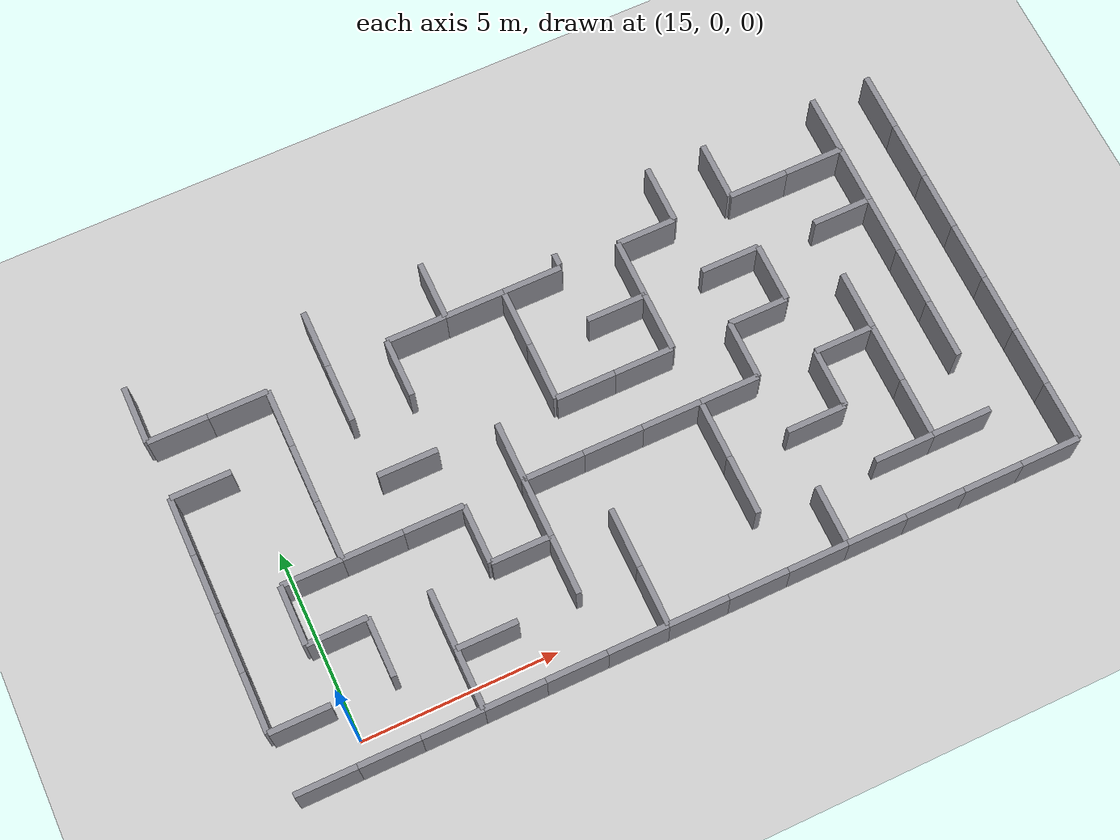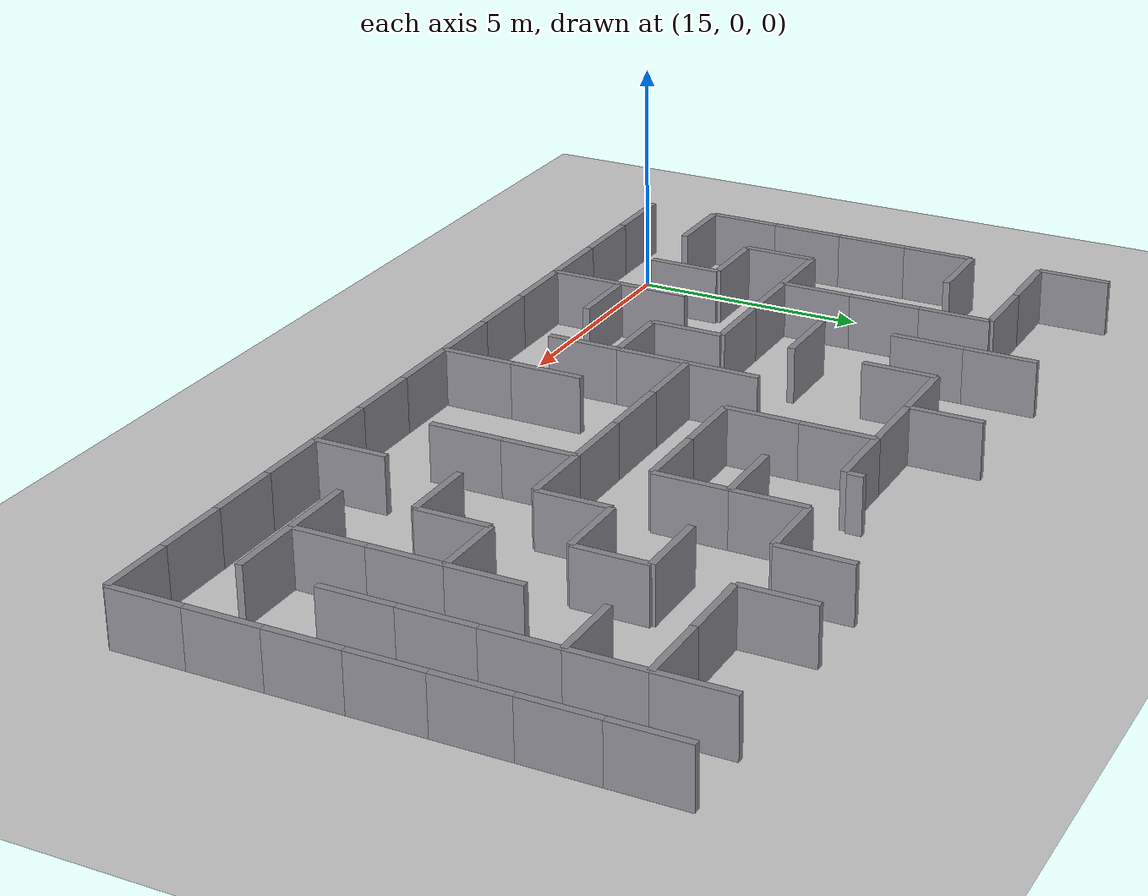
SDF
<sdf version="1.10">
 <world name="sar_maze_generated">
  <model name="ground_plane">
   <static>true</static>
   <link name="link">
    <collision name="collision">
     <geometry><plane><normal>0 0 1</normal><size>51.1 51.1</size></plane></geometry>
    </collision>
    <visual name="visual">
     <geometry><plane><normal>0 0 1</normal><size>51.1 51.1</size></plane></geometry>
     <material><ambient>0.8 0.8 0.8 1</ambient><diffuse>0.8 0.8 0.8 1</diffuse></material>
    </visual>
    <pose>16.27 16.27 0 0 0 0</pose>
    <inertial>
     <mass>1</mass>
     <inertia><ixx>1</ixx><ixy>0</ixy><ixz>0</ixz><iyy>1</iyy><iyz>0</iyz><izz>1</izz></inertia>
    </inertial>
   </link>
  </model>
  <model name="maze_structure">
   <static>true</static>
   <link name="wall_h_15">
    <static>true</static>
    <pose>13.9500 0.7750 0.6000 0 0 0</pose>
    <collision name="wall_h_15_collision">
     <geometry><box><size>1.5500 0.1500 1.2000</size></box></geometry>
    </collision>
    <visual name="wall_h_15_visual">
     <geometry><box><size>1.5500 0.1500 1.2000</size></box></geometry>
     <material><ambient>0.55 0.55 0.58 1</ambient><diffuse>0.55 0.55 0.58 1</diffuse></material>
    </visual>
   </link>
   <link name="wall_boundary_h_16">
    <static>true</static>
    <pose>13.9500 -0.7750 0.6000 0 0 0</pose>
    <collision name="wall_boundary_h_16_collision">
     <geometry><box><size>1.5500 0.1500 1.2000</size></box></geometry>
    </collision>
    <visual name="wall_boundary_h_16_visual">
     <geometry><box><size>1.5500 0.1500 1.2000</size></box></geometry>
     <material><ambient>0.55 0.55 0.58 1</ambient><diffuse>0.55 0.55 0.58 1</diffuse></material>
    </visual>
   </link>
   <link name="wall_boundary_h_17">
    <static>true</static>
    <pose>15.5000 -0.7750 0.6000 0 0 0</pose>
    <collision name="wall_boundary_h_17_collision">
     <geometry><box><size>1.5500 0.1500 1.2000</size></box></geometry>
    </collision>
    <visual name="wall_boundary_h_17_visual">
     <geometry><box><size>1.5500 0.1500 1.2000</size></box></geometry>
     <material><ambient>0.55 0.55 0.58 1</ambient><diffuse>0.55 0.55 0.58 1</diffuse></material>
    </visual>
   </link>
   <link name="wall_boundary_h_18">
    <static>true</static>
    <pose>17.0500 -0.7750 0.6000 0 0 0</pose>
    <collision name="wall_boundary_h_18_collision">
     <geometry><box><size>1.5500 0.1500 1.2000</size></box></geometry>
    </collision>
    <visual name="wall_boundary_h_18_visual">
     <geometry><box><size>1.5500 0.1500 1.2000</size></box></geometry>
     <material><ambient>0.55 0.55 0.58 1</ambient><diffuse>0.55 0.55 0.58 1</diffuse></material>
    </visual>
   </link>
   <link name="wall_v_19">
    <static>true</static>
    <pose>17.8250 0.0000 0.6000 0 0 0</pose>
    <collision name="wall_v_19_collision">
     <geometry><box><size>0.1500 1.5500 1.2000</size></box></geometry>
    </collision>
    <visual name="wall_v_19_visual">
     <geometry><box><size>0.1500 1.5500 1.2000</size></box></geometry>
     <material><ambient>0.55 0.55 0.58 1</ambient><diffuse>0.55 0.55 0.58 1</diffuse></material>
    </visual>
   </link>
   <link name="wall_h_20">
    <static>true</static>
    <pose>18.6000 0.7750 0.6000 0 0 0</pose>
    <collision name="wall_h_20_collision">
     <geometry><box><size>1.5500 0.1500 1.2000</size></box></geometry>
    </collision>
    <visual name="wall_h_20_visual">
     <geometry><box><size>1.5500 0.1500 1.2000</size></box></geometry>
     <material><ambient>0.55 0.55 0.58 1</ambient><diffuse>0.55 0.55 0.58 1</diffuse></material>
    </visual>
   </link>
   <link name="wall_boundary_h_21">
    <static>true</static>
    <pose>18.6000 -0.7750 0.6000 0 0 0</pose>
    <collision name="wall_boundary_h_21_collision">
     <geometry><box><size>1.5500 0.1500 1.2000</size></box></geometry>
    </collision>
    <visual name="wall_boundary_h_21_visual">
     <geometry><box><size>1.5500 0.1500 1.2000</size></box></geometry>
     <material><ambient>0.55 0.55 0.58 1</ambient><diffuse>0.55 0.55 0.58 1</diffuse></material>
    </visual>
   </link>
   <link name="wall_boundary_h_22">
    <static>true</static>
    <pose>20.1500 -0.7750 0.6000 0 0 0</pose>
    <collision name="wall_boundary_h_22_collision">
     <geometry><box><size>1.5500 0.1500 1.2000</size></box></geometry>
    </collision>
    <visual name="wall_boundary_h_22_visual">
     <geometry><box><size>1.5500 0.1500 1.2000</size></box></geometry>
     <material><ambient>0.55 0.55 0.58 1</ambient><diffuse>0.55 0.55 0.58 1</diffuse></material>
    </visual>
   </link>
   <link name="wall_boundary_h_23">
    <static>true</static>
    <pose>21.7000 -0.7750 0.6000 0 0 0</pose>
    <collision name="wall_boundary_h_23_collision">
     <geometry><box><size>1.5500 0.1500 1.2000</size></box></geometry>
    </collision>
    <visual name="wall_boundary_h_23_visual">
     <geometry><box><size>1.5500 0.1500 1.2000</size></box></geometry>
     <material><ambient>0.55 0.55 0.58 1</ambient><diffuse>0.55 0.55 0.58 1</diffuse></material>
    </visual>
   </link>
   <link name="wall_v_24">
    <static>true</static>
    <pose>22.4750 0.0000 0.6000 0 0 0</pose>
    <collision name="wall_v_24_collision">
     <geometry><box><size>0.1500 1.5500 1.2000</size></box></geometry>
    </collision>
    <visual name="wall_v_24_visual">
     <geometry><box><size>0.1500 1.5500 1.2000</size></box></geometry>
     <material><ambient>0.55 0.55 0.58 1</ambient><diffuse>0.55 0.55 0.58 1</diffuse></material>
    </visual>
   </link>
   <link name="wall_boundary_h_25">
    <static>true</static>
    <pose>23.2500 -0.7750 0.6000 0 0 0</pose>
    <collision name="wall_boundary_h_25_collision">
     <geometry><box><size>1.5500 0.1500 1.2000</size></box></geometry>
    </collision>
    <visual name="wall_boundary_h_25_visual">
     <geometry><box><size>1.5500 0.1500 1.2000</size></box></geometry>
     <material><ambient>0.55 0.55 0.58 1</ambient><diffuse>0.55 0.55 0.58 1</diffuse></material>
    </visual>
   </link>
   <link name="wall_boundary_h_26">
    <static>true</static>
    <pose>24.8000 -0.7750 0.6000 0 0 0</pose>
    <collision name="wall_boundary_h_26_collision">
     <geometry><box><size>1.5500 0.1500 1.2000</size></box></geometry>
    </collision>
    <visual name="wall_boundary_h_26_visual">
     <geometry><box><size>1.5500 0.1500 1.2000</size></box></geometry>
     <material><ambient>0.55 0.55 0.58 1</ambient><diffuse>0.55 0.55 0.58 1</diffuse></material>
    </visual>
   </link>
   <link name="wall_boundary_h_27">
    <static>true</static>
    <pose>26.3500 -0.7750 0.6000 0 0 0</pose>
    <collision name="wall_boundary_h_27_collision">
     <geometry><box><size>1.5500 0.1500 1.2000</size></box></geometry>
    </collision>
    <visual name="wall_boundary_h_27_visual">
     <geometry><box><size>1.5500 0.1500 1.2000</size></box></geometry>
     <material><ambient>0.55 0.55 0.58 1</ambient><diffuse>0.55 0.55 0.58 1</diffuse></material>
    </visual>
   </link>
   <link name="wall_v_28">
    <static>true</static>
    <pose>27.1250 0.0000 0.6000 0 0 0</pose>
    <collision name="wall_v_28_collision">
     <geometry><box><size>0.1500 1.5500 1.2000</size></box></geometry>
    </collision>
    <visual name="wall_v_28_visual">
     <geometry><box><size>0.1500 1.5500 1.2000</size></box></geometry>
     <material><ambient>0.55 0.55 0.58 1</ambient><diffuse>0.55 0.55 0.58 1</diffuse></material>
    </visual>
   </link>
   <link name="wall_boundary_h_29">
    <static>true</static>
    <pose>27.9000 -0.7750 0.6000 0 0 0</pose>
    <collision name="wall_boundary_h_29_collision">
     <geometry><box><size>1.5500 0.1500 1.2000</size></box></geometry>
    </collision>
    <visual name="wall_boundary_h_29_visual">
     <geometry><box><size>1.5500 0.1500 1.2000</size></box></geometry>
     <material><ambient>0.55 0.55 0.58 1</ambient><diffuse>0.55 0.55 0.58 1</diffuse></material>
    </visual>
   </link>
   <link name="wall_h_30">
    <static>true</static>
    <pose>29.4500 0.7750 0.6000 0 0 0</pose>
    <collision name="wall_h_30_collision">
     <geometry><box><size>1.5500 0.1500 1.2000</size></box></geometry>
    </collision>
    <visual name="wall_h_30_visual">
     <geometry><box><size>1.5500 0.1500 1.2000</size></box></geometry>
     <material><ambient>0.55 0.55 0.58 1</ambient><diffuse>0.55 0.55 0.58 1</diffuse></material>
    </visual>
   </link>
   <link name="wall_boundary_h_31">
    <static>true</static>
    <pose>29.4500 -0.7750 0.6000 0 0 0</pose>
    <collision name="wall_boundary_h_31_collision">
     <geometry><box><size>1.5500 0.1500 1.2000</size></box></geometry>
    </collision>
    <visual name="wall_boundary_h_31_visual">
     <geometry><box><size>1.5500 0.1500 1.2000</size></box></geometry>
     <material><ambient>0.55 0.55 0.58 1</ambient><diffuse>0.55 0.55 0.58 1</diffuse></material>
    </visual>
   </link>
   <link name="wall_h_32">
    <static>true</static>
    <pose>31.0000 0.7750 0.6000 0 0 0</pose>
    <collision name="wall_h_32_collision">
     <geometry><box><size>1.5500 0.1500 1.2000</size></box></geometry>
    </collision>
    <visual name="wall_h_32_visual">
     <geometry><box><size>1.5500 0.1500 1.2000</size></box></geometry>
     <material><ambient>0.55 0.55 0.58 1</ambient><diffuse>0.55 0.55 0.58 1</diffuse></material>
    </visual>
   </link>
   <link name="wall_boundary_h_33">
    <static>true</static>
    <pose>31.0000 -0.7750 0.6000 0 0 0</pose>
    <collision name="wall_boundary_h_33_collision">
     <geometry><box><size>1.5500 0.1500 1.2000</size></box></geometry>
    </collision>
    <visual name="wall_boundary_h_33_visual">
     <geometry><box><size>1.5500 0.1500 1.2000</size></box></geometry>
     <material><ambient>0.55 0.55 0.58 1</ambient><diffuse>0.55 0.55 0.58 1</diffuse></material>
    </visual>
   </link>
   <link name="wall_boundary_h_34">
    <static>true</static>
    <pose>32.5500 -0.7750 0.6000 0 0 0</pose>
    <collision name="wall_boundary_h_34_collision">
     <geometry><box><size>1.5500 0.1500 1.2000</size></box></geometry>
    </collision>
    <visual name="wall_boundary_h_34_visual">
     <geometry><box><size>1.5500 0.1500 1.2000</size></box></geometry>
     <material><ambient>0.55 0.55 0.58 1</ambient><diffuse>0.55 0.55 0.58 1</diffuse></material>
    </visual>
   </link>
   <link name="wall_boundary_v_35">
    <static>true</static>
    <pose>33.3250 0.0000 0.6000 0 0 0</pose>
    <collision name="wall_boundary_v_35_collision">
     <geometry><box><size>0.1500 1.5500 1.2000</size></box></geometry>
    </collision>
    <visual name="wall_boundary_v_35_visual">
     <geometry><box><size>0.1500 1.5500 1.2000</size></box></geometry>
     <material><ambient>0.55 0.55 0.58 1</ambient><diffuse>0.55 0.55 0.58 1</diffuse></material>
    </visual>
   </link>
   <link name="wall_v_45">
    <static>true</static>
    <pose>13.1750 1.5500 0.6000 0 0 0</pose>
    <collision name="wall_v_45_collision">
     <geometry><box><size>0.1500 1.5500 1.2000</size></box></geometry>
    </collision>
    <visual name="wall_v_45_visual">
     <geometry><box><size>0.1500 1.5500 1.2000</size></box></geometry>
     <material><ambient>0.55 0.55 0.58 1</ambient><diffuse>0.55 0.55 0.58 1</diffuse></material>
    </visual>
   </link>
   <link name="wall_h_46">
    <static>true</static>
    <pose>15.5000 2.3250 0.6000 0 0 0</pose>
    <collision name="wall_h_46_collision">
     <geometry><box><size>1.5500 0.1500 1.2000</size></box></geometry>
    </collision>
    <visual name="wall_h_46_visual">
     <geometry><box><size>1.5500 0.1500 1.2000</size></box></geometry>
     <material><ambient>0.55 0.55 0.58 1</ambient><diffuse>0.55 0.55 0.58 1</diffuse></material>
    </visual>
   </link>
   <link name="wall_v_47">
    <static>true</static>
    <pose>16.2750 1.5500 0.6000 0 0 0</pose>
    <collision name="wall_v_47_collision">
     <geometry><box><size>0.1500 1.5500 1.2000</size></box></geometry>
    </collision>
    <visual name="wall_v_47_visual">
     <geometry><box><size>0.1500 1.5500 1.2000</size></box></geometry>
     <material><ambient>0.55 0.55 0.58 1</ambient><diffuse>0.55 0.55 0.58 1</diffuse></material>
    </visual>
   </link>
   <link name="wall_v_48">
    <static>true</static>
    <pose>17.8250 1.5500 0.6000 0 0 0</pose>
    <collision name="wall_v_48_collision">
     <geometry><box><size>0.1500 1.5500 1.2000</size></box></geometry>
    </collision>
    <visual name="wall_v_48_visual">
     <geometry><box><size>0.1500 1.5500 1.2000</size></box></geometry>
     <material><ambient>0.55 0.55 0.58 1</ambient><diffuse>0.55 0.55 0.58 1</diffuse></material>
    </visual>
   </link>
   <link name="wall_h_49">
    <static>true</static>
    <pose>20.1500 2.3250 0.6000 0 0 0</pose>
    <collision name="wall_h_49_collision">
     <geometry><box><size>1.5500 0.1500 1.2000</size></box></geometry>
    </collision>
    <visual name="wall_h_49_visual">
     <geometry><box><size>1.5500 0.1500 1.2000</size></box></geometry>
     <material><ambient>0.55 0.55 0.58 1</ambient><diffuse>0.55 0.55 0.58 1</diffuse></material>
    </visual>
   </link>
   <link name="wall_v_50">
    <static>true</static>
    <pose>20.9250 1.5500 0.6000 0 0 0</pose>
    <collision name="wall_v_50_collision">
     <geometry><box><size>0.1500 1.5500 1.2000</size></box></geometry>
    </collision>
    <visual name="wall_v_50_visual">
     <geometry><box><size>0.1500 1.5500 1.2000</size></box></geometry>
     <material><ambient>0.55 0.55 0.58 1</ambient><diffuse>0.55 0.55 0.58 1</diffuse></material>
    </visual>
   </link>
   <link name="wall_v_51">
    <static>true</static>
    <pose>22.4750 1.5500 0.6000 0 0 0</pose>
    <collision name="wall_v_51_collision">
     <geometry><box><size>0.1500 1.5500 1.2000</size></box></geometry>
    </collision>
    <visual name="wall_v_51_visual">
     <geometry><box><size>0.1500 1.5500 1.2000</size></box></geometry>
     <material><ambient>0.55 0.55 0.58 1</ambient><diffuse>0.55 0.55 0.58 1</diffuse></material>
    </visual>
   </link>
   <link name="wall_v_52">
    <static>true</static>
    <pose>25.5750 1.5500 0.6000 0 0 0</pose>
    <collision name="wall_v_52_collision">
     <geometry><box><size>0.1500 1.5500 1.2000</size></box></geometry>
    </collision>
    <visual name="wall_v_52_visual">
     <geometry><box><size>0.1500 1.5500 1.2000</size></box></geometry>
     <material><ambient>0.55 0.55 0.58 1</ambient><diffuse>0.55 0.55 0.58 1</diffuse></material>
    </visual>
   </link>
   <link name="wall_h_53">
    <static>true</static>
    <pose>27.9000 2.3250 0.6000 0 0 0</pose>
    <collision name="wall_h_53_collision">
     <geometry><box><size>1.5500 0.1500 1.2000</size></box></geometry>
    </collision>
    <visual name="wall_h_53_visual">
     <geometry><box><size>1.5500 0.1500 1.2000</size></box></geometry>
     <material><ambient>0.55 0.55 0.58 1</ambient><diffuse>0.55 0.55 0.58 1</diffuse></material>
    </visual>
   </link>
   <link name="wall_v_54">
    <static>true</static>
    <pose>30.2250 1.5500 0.6000 0 0 0</pose>
    <collision name="wall_v_54_collision">
     <geometry><box><size>0.1500 1.5500 1.2000</size></box></geometry>
    </collision>
    <visual name="wall_v_54_visual">
     <geometry><box><size>0.1500 1.5500 1.2000</size></box></geometry>
     <material><ambient>0.55 0.55 0.58 1</ambient><diffuse>0.55 0.55 0.58 1</diffuse></material>
    </visual>
   </link>
   <link name="wall_boundary_v_55">
    <static>true</static>
    <pose>33.3250 1.5500 0.6000 0 0 0</pose>
    <collision name="wall_boundary_v_55_collision">
     <geometry><box><size>0.1500 1.5500 1.2000</size></box></geometry>
    </collision>
    <visual name="wall_boundary_v_55_visual">
     <geometry><box><size>0.1500 1.5500 1.2000</size></box></geometry>
     <material><ambient>0.55 0.55 0.58 1</ambient><diffuse>0.55 0.55 0.58 1</diffuse></material>
    </visual>
   </link>
   <link name="wall_v_64">
    <static>true</static>
    <pose>13.1750 3.1000 0.6000 0 0 0</pose>
    <collision name="wall_v_64_collision">
     <geometry><box><size>0.1500 1.5500 1.2000</size></box></geometry>
    </collision>
    <visual name="wall_v_64_visual">
     <geometry><box><size>0.1500 1.5500 1.2000</size></box></geometry>
     <material><ambient>0.55 0.55 0.58 1</ambient><diffuse>0.55 0.55 0.58 1</diffuse></material>
    </visual>
   </link>
   <link name="wall_v_65">
    <static>true</static>
    <pose>14.7250 3.1000 0.6000 0 0 0</pose>
    <collision name="wall_v_65_collision">
     <geometry><box><size>0.1500 1.5500 1.2000</size></box></geometry>
    </collision>
    <visual name="wall_v_65_visual">
     <geometry><box><size>0.1500 1.5500 1.2000</size></box></geometry>
     <material><ambient>0.55 0.55 0.58 1</ambient><diffuse>0.55 0.55 0.58 1</diffuse></material>
    </visual>
   </link>
   <link name="wall_h_66">
    <static>true</static>
    <pose>15.5000 3.8750 0.6000 0 0 0</pose>
    <collision name="wall_h_66_collision">
     <geometry><box><size>1.5500 0.1500 1.2000</size></box></geometry>
    </collision>
    <visual name="wall_h_66_visual">
     <geometry><box><size>1.5500 0.1500 1.2000</size></box></geometry>
     <material><ambient>0.55 0.55 0.58 1</ambient><diffuse>0.55 0.55 0.58 1</diffuse></material>
    </visual>
   </link>
   <link name="wall_h_67">
    <static>true</static>
    <pose>17.0500 3.8750 0.6000 0 0 0</pose>
    <collision name="wall_h_67_collision">
     <geometry><box><size>1.5500 0.1500 1.2000</size></box></geometry>
    </collision>
    <visual name="wall_h_67_visual">
     <geometry><box><size>1.5500 0.1500 1.2000</size></box></geometry>
     <material><ambient>0.55 0.55 0.58 1</ambient><diffuse>0.55 0.55 0.58 1</diffuse></material>
    </visual>
   </link>
   <link name="wall_h_68">
    <static>true</static>
    <pose>18.6000 3.8750 0.6000 0 0 0</pose>
    <collision name="wall_h_68_collision">
     <geometry><box><size>1.5500 0.1500 1.2000</size></box></geometry>
    </collision>
    <visual name="wall_h_68_visual">
     <geometry><box><size>1.5500 0.1500 1.2000</size></box></geometry>
     <material><ambient>0.55 0.55 0.58 1</ambient><diffuse>0.55 0.55 0.58 1</diffuse></material>
    </visual>
   </link>
   <link name="wall_v_69">
    <static>true</static>
    <pose>19.3750 3.1000 0.6000 0 0 0</pose>
    <collision name="wall_v_69_collision">
     <geometry><box><size>0.1500 1.5500 1.2000</size></box></geometry>
    </collision>
    <visual name="wall_v_69_visual">
     <geometry><box><size>0.1500 1.5500 1.2000</size></box></geometry>
     <material><ambient>0.55 0.55 0.58 1</ambient><diffuse>0.55 0.55 0.58 1</diffuse></material>
    </visual>
   </link>
   <link name="wall_v_70">
    <static>true</static>
    <pose>20.9250 3.1000 0.6000 0 0 0</pose>
    <collision name="wall_v_70_collision">
     <geometry><box><size>0.1500 1.5500 1.2000</size></box></geometry>
    </collision>
    <visual name="wall_v_70_visual">
     <geometry><box><size>0.1500 1.5500 1.2000</size></box></geometry>
     <material><ambient>0.55 0.55 0.58 1</ambient><diffuse>0.55 0.55 0.58 1</diffuse></material>
    </visual>
   </link>
   <link name="wall_h_71">
    <static>true</static>
    <pose>21.7000 3.8750 0.6000 0 0 0</pose>
    <collision name="wall_h_71_collision">
     <geometry><box><size>1.5500 0.1500 1.2000</size></box></geometry>
    </collision>
    <visual name="wall_h_71_visual">
     <geometry><box><size>1.5500 0.1500 1.2000</size></box></geometry>
     <material><ambient>0.55 0.55 0.58 1</ambient><diffuse>0.55 0.55 0.58 1</diffuse></material>
    </visual>
   </link>
   <link name="wall_h_72">
    <static>true</static>
    <pose>23.2500 3.8750 0.6000 0 0 0</pose>
    <collision name="wall_h_72_collision">
     <geometry><box><size>1.5500 0.1500 1.2000</size></box></geometry>
    </collision>
    <visual name="wall_h_72_visual">
     <geometry><box><size>1.5500 0.1500 1.2000</size></box></geometry>
     <material><ambient>0.55 0.55 0.58 1</ambient><diffuse>0.55 0.55 0.58 1</diffuse></material>
    </visual>
   </link>
   <link name="wall_h_73">
    <static>true</static>
    <pose>24.8000 3.8750 0.6000 0 0 0</pose>
    <collision name="wall_h_73_collision">
     <geometry><box><size>1.5500 0.1500 1.2000</size></box></geometry>
    </collision>
    <visual name="wall_h_73_visual">
     <geometry><box><size>1.5500 0.1500 1.2000</size></box></geometry>
     <material><ambient>0.55 0.55 0.58 1</ambient><diffuse>0.55 0.55 0.58 1</diffuse></material>
    </visual>
   </link>
   <link name="wall_v_74">
    <static>true</static>
    <pose>25.5750 3.1000 0.6000 0 0 0</pose>
    <collision name="wall_v_74_collision">
     <geometry><box><size>0.1500 1.5500 1.2000</size></box></geometry>
    </collision>
    <visual name="wall_v_74_visual">
     <geometry><box><size>0.1500 1.5500 1.2000</size></box></geometry>
     <material><ambient>0.55 0.55 0.58 1</ambient><diffuse>0.55 0.55 0.58 1</diffuse></material>
    </visual>
   </link>
   <link name="wall_h_75">
    <static>true</static>
    <pose>26.3500 3.8750 0.6000 0 0 0</pose>
    <collision name="wall_h_75_collision">
     <geometry><box><size>1.5500 0.1500 1.2000</size></box></geometry>
    </collision>
    <visual name="wall_h_75_visual">
     <geometry><box><size>1.5500 0.1500 1.2000</size></box></geometry>
     <material><ambient>0.55 0.55 0.58 1</ambient><diffuse>0.55 0.55 0.58 1</diffuse></material>
    </visual>
   </link>
   <link name="wall_v_76">
    <static>true</static>
    <pose>28.6750 3.1000 0.6000 0 0 0</pose>
    <collision name="wall_v_76_collision">
     <geometry><box><size>0.1500 1.5500 1.2000</size></box></geometry>
    </collision>
    <visual name="wall_v_76_visual">
     <geometry><box><size>0.1500 1.5500 1.2000</size></box></geometry>
     <material><ambient>0.55 0.55 0.58 1</ambient><diffuse>0.55 0.55 0.58 1</diffuse></material>
    </visual>
   </link>
   <link name="wall_h_77">
    <static>true</static>
    <pose>29.4500 3.8750 0.6000 0 0 0</pose>
    <collision name="wall_h_77_collision">
     <geometry><box><size>1.5500 0.1500 1.2000</size></box></geometry>
    </collision>
    <visual name="wall_h_77_visual">
     <geometry><box><size>1.5500 0.1500 1.2000</size></box></geometry>
     <material><ambient>0.55 0.55 0.58 1</ambient><diffuse>0.55 0.55 0.58 1</diffuse></material>
    </visual>
   </link>
   <link name="wall_v_78">
    <static>true</static>
    <pose>30.2250 3.1000 0.6000 0 0 0</pose>
    <collision name="wall_v_78_collision">
     <geometry><box><size>0.1500 1.5500 1.2000</size></box></geometry>
    </collision>
    <visual name="wall_v_78_visual">
     <geometry><box><size>0.1500 1.5500 1.2000</size></box></geometry>
     <material><ambient>0.55 0.55 0.58 1</ambient><diffuse>0.55 0.55 0.58 1</diffuse></material>
    </visual>
   </link>
   <link name="wall_v_79">
    <static>true</static>
    <pose>31.7750 3.1000 0.6000 0 0 0</pose>
    <collision name="wall_v_79_collision">
     <geometry><box><size>0.1500 1.5500 1.2000</size></box></geometry>
    </collision>
    <visual name="wall_v_79_visual">
     <geometry><box><size>0.1500 1.5500 1.2000</size></box></geometry>
     <material><ambient>0.55 0.55 0.58 1</ambient><diffuse>0.55 0.55 0.58 1</diffuse></material>
    </visual>
   </link>
   <link name="wall_boundary_v_80">
    <static>true</static>
    <pose>33.3250 3.1000 0.6000 0 0 0</pose>
    <collision name="wall_boundary_v_80_collision">
     <geometry><box><size>0.1500 1.5500 1.2000</size></box></geometry>
    </collision>
    <visual name="wall_boundary_v_80_visual">
     <geometry><box><size>0.1500 1.5500 1.2000</size></box></geometry>
     <material><ambient>0.55 0.55 0.58 1</ambient><diffuse>0.55 0.55 0.58 1</diffuse></material>
    </visual>
   </link>
   <link name="wall_v_88">
    <static>true</static>
    <pose>13.1750 4.6500 0.6000 0 0 0</pose>
    <collision name="wall_v_88_collision">
     <geometry><box><size>0.1500 1.5500 1.2000</size></box></geometry>
    </collision>
    <visual name="wall_v_88_visual">
     <geometry><box><size>0.1500 1.5500 1.2000</size></box></geometry>
     <material><ambient>0.55 0.55 0.58 1</ambient><diffuse>0.55 0.55 0.58 1</diffuse></material>
    </visual>
   </link>
   <link name="wall_v_89">
    <static>true</static>
    <pose>16.2750 4.6500 0.6000 0 0 0</pose>
    <collision name="wall_v_89_collision">
     <geometry><box><size>0.1500 1.5500 1.2000</size></box></geometry>
    </collision>
    <visual name="wall_v_89_visual">
     <geometry><box><size>0.1500 1.5500 1.2000</size></box></geometry>
     <material><ambient>0.55 0.55 0.58 1</ambient><diffuse>0.55 0.55 0.58 1</diffuse></material>
    </visual>
   </link>
   <link name="wall_h_90">
    <static>true</static>
    <pose>18.6000 5.4250 0.6000 0 0 0</pose>
    <collision name="wall_h_90_collision">
     <geometry><box><size>1.5500 0.1500 1.2000</size></box></geometry>
    </collision>
    <visual name="wall_h_90_visual">
     <geometry><box><size>1.5500 0.1500 1.2000</size></box></geometry>
     <material><ambient>0.55 0.55 0.58 1</ambient><diffuse>0.55 0.55 0.58 1</diffuse></material>
    </visual>
   </link>
   <link name="wall_v_91">
    <static>true</static>
    <pose>20.9250 4.6500 0.6000 0 0 0</pose>
    <collision name="wall_v_91_collision">
     <geometry><box><size>0.1500 1.5500 1.2000</size></box></geometry>
    </collision>
    <visual name="wall_v_91_visual">
     <geometry><box><size>0.1500 1.5500 1.2000</size></box></geometry>
     <material><ambient>0.55 0.55 0.58 1</ambient><diffuse>0.55 0.55 0.58 1</diffuse></material>
    </visual>
   </link>
   <link name="wall_h_92">
    <static>true</static>
    <pose>23.2500 5.4250 0.6000 0 0 0</pose>
    <collision name="wall_h_92_collision">
     <geometry><box><size>1.5500 0.1500 1.2000</size></box></geometry>
    </collision>
    <visual name="wall_h_92_visual">
     <geometry><box><size>1.5500 0.1500 1.2000</size></box></geometry>
     <material><ambient>0.55 0.55 0.58 1</ambient><diffuse>0.55 0.55 0.58 1</diffuse></material>
    </visual>
   </link>
   <link name="wall_h_93">
    <static>true</static>
    <pose>24.8000 5.4250 0.6000 0 0 0</pose>
    <collision name="wall_h_93_collision">
     <geometry><box><size>1.5500 0.1500 1.2000</size></box></geometry>
    </collision>
    <visual name="wall_h_93_visual">
     <geometry><box><size>1.5500 0.1500 1.2000</size></box></geometry>
     <material><ambient>0.55 0.55 0.58 1</ambient><diffuse>0.55 0.55 0.58 1</diffuse></material>
    </visual>
   </link>
   <link name="wall_v_94">
    <static>true</static>
    <pose>27.1250 4.6500 0.6000 0 0 0</pose>
    <collision name="wall_v_94_collision">
     <geometry><box><size>0.1500 1.5500 1.2000</size></box></geometry>
    </collision>
    <visual name="wall_v_94_visual">
     <geometry><box><size>0.1500 1.5500 1.2000</size></box></geometry>
     <material><ambient>0.55 0.55 0.58 1</ambient><diffuse>0.55 0.55 0.58 1</diffuse></material>
    </visual>
   </link>
   <link name="wall_h_95">
    <static>true</static>
    <pose>27.9000 5.4250 0.6000 0 0 0</pose>
    <collision name="wall_h_95_collision">
     <geometry><box><size>1.5500 0.1500 1.2000</size></box></geometry>
    </collision>
    <visual name="wall_h_95_visual">
     <geometry><box><size>1.5500 0.1500 1.2000</size></box></geometry>
     <material><ambient>0.55 0.55 0.58 1</ambient><diffuse>0.55 0.55 0.58 1</diffuse></material>
    </visual>
   </link>
   <link name="wall_v_96">
    <static>true</static>
    <pose>30.2250 4.6500 0.6000 0 0 0</pose>
    <collision name="wall_v_96_collision">
     <geometry><box><size>0.1500 1.5500 1.2000</size></box></geometry>
    </collision>
    <visual name="wall_v_96_visual">
     <geometry><box><size>0.1500 1.5500 1.2000</size></box></geometry>
     <material><ambient>0.55 0.55 0.58 1</ambient><diffuse>0.55 0.55 0.58 1</diffuse></material>
    </visual>
   </link>
   <link name="wall_v_97">
    <static>true</static>
    <pose>31.7750 4.6500 0.6000 0 0 0</pose>
    <collision name="wall_v_97_collision">
     <geometry><box><size>0.1500 1.5500 1.2000</size></box></geometry>
    </collision>
    <visual name="wall_v_97_visual">
     <geometry><box><size>0.1500 1.5500 1.2000</size></box></geometry>
     <material><ambient>0.55 0.55 0.58 1</ambient><diffuse>0.55 0.55 0.58 1</diffuse></material>
    </visual>
   </link>
   <link name="wall_boundary_v_98">
    <static>true</static>
    <pose>33.3250 4.6500 0.6000 0 0 0</pose>
    <collision name="wall_boundary_v_98_collision">
     <geometry><box><size>0.1500 1.5500 1.2000</size></box></geometry>
    </collision>
    <visual name="wall_boundary_v_98_visual">
     <geometry><box><size>0.1500 1.5500 1.2000</size></box></geometry>
     <material><ambient>0.55 0.55 0.58 1</ambient><diffuse>0.55 0.55 0.58 1</diffuse></material>
    </visual>
   </link>
   <link name="wall_v_107">
    <static>true</static>
    <pose>13.1750 6.2000 0.6000 0 0 0</pose>
    <collision name="wall_v_107_collision">
     <geometry><box><size>0.1500 1.5500 1.2000</size></box></geometry>
    </collision>
    <visual name="wall_v_107_visual">
     <geometry><box><size>0.1500 1.5500 1.2000</size></box></geometry>
     <material><ambient>0.55 0.55 0.58 1</ambient><diffuse>0.55 0.55 0.58 1</diffuse></material>
    </visual>
   </link>
   <link name="wall_h_108">
    <static>true</static>
    <pose>13.9500 6.9750 0.6000 0 0 0</pose>
    <collision name="wall_h_108_collision">
     <geometry><box><size>1.5500 0.1500 1.2000</size></box></geometry>
    </collision>
    <visual name="wall_h_108_visual">
     <geometry><box><size>1.5500 0.1500 1.2000</size></box></geometry>
     <material><ambient>0.55 0.55 0.58 1</ambient><diffuse>0.55 0.55 0.58 1</diffuse></material>
    </visual>
   </link>
   <link name="wall_v_109">
    <static>true</static>
    <pose>16.2750 6.2000 0.6000 0 0 0</pose>
    <collision name="wall_v_109_collision">
     <geometry><box><size>0.1500 1.5500 1.2000</size></box></geometry>
    </collision>
    <visual name="wall_v_109_visual">
     <geometry><box><size>0.1500 1.5500 1.2000</size></box></geometry>
     <material><ambient>0.55 0.55 0.58 1</ambient><diffuse>0.55 0.55 0.58 1</diffuse></material>
    </visual>
   </link>
   <link name="wall_v_110">
    <static>true</static>
    <pose>22.4750 6.2000 0.6000 0 0 0</pose>
    <collision name="wall_v_110_collision">
     <geometry><box><size>0.1500 1.5500 1.2000</size></box></geometry>
    </collision>
    <visual name="wall_v_110_visual">
     <geometry><box><size>0.1500 1.5500 1.2000</size></box></geometry>
     <material><ambient>0.55 0.55 0.58 1</ambient><diffuse>0.55 0.55 0.58 1</diffuse></material>
    </visual>
   </link>
   <link name="wall_h_111">
    <static>true</static>
    <pose>24.8000 6.9750 0.6000 0 0 0</pose>
    <collision name="wall_h_111_collision">
     <geometry><box><size>1.5500 0.1500 1.2000</size></box></geometry>
    </collision>
    <visual name="wall_h_111_visual">
     <geometry><box><size>1.5500 0.1500 1.2000</size></box></geometry>
     <material><ambient>0.55 0.55 0.58 1</ambient><diffuse>0.55 0.55 0.58 1</diffuse></material>
    </visual>
   </link>
   <link name="wall_v_112">
    <static>true</static>
    <pose>25.5750 6.2000 0.6000 0 0 0</pose>
    <collision name="wall_v_112_collision">
     <geometry><box><size>0.1500 1.5500 1.2000</size></box></geometry>
    </collision>
    <visual name="wall_v_112_visual">
     <geometry><box><size>0.1500 1.5500 1.2000</size></box></geometry>
     <material><ambient>0.55 0.55 0.58 1</ambient><diffuse>0.55 0.55 0.58 1</diffuse></material>
    </visual>
   </link>
   <link name="wall_h_113">
    <static>true</static>
    <pose>27.9000 6.9750 0.6000 0 0 0</pose>
    <collision name="wall_h_113_collision">
     <geometry><box><size>1.5500 0.1500 1.2000</size></box></geometry>
    </collision>
    <visual name="wall_h_113_visual">
     <geometry><box><size>1.5500 0.1500 1.2000</size></box></geometry>
     <material><ambient>0.55 0.55 0.58 1</ambient><diffuse>0.55 0.55 0.58 1</diffuse></material>
    </visual>
   </link>
   <link name="wall_v_114">
    <static>true</static>
    <pose>28.6750 6.2000 0.6000 0 0 0</pose>
    <collision name="wall_v_114_collision">
     <geometry><box><size>0.1500 1.5500 1.2000</size></box></geometry>
    </collision>
    <visual name="wall_v_114_visual">
     <geometry><box><size>0.1500 1.5500 1.2000</size></box></geometry>
     <material><ambient>0.55 0.55 0.58 1</ambient><diffuse>0.55 0.55 0.58 1</diffuse></material>
    </visual>
   </link>
   <link name="wall_h_115">
    <static>true</static>
    <pose>31.0000 6.9750 0.6000 0 0 0</pose>
    <collision name="wall_h_115_collision">
     <geometry><box><size>1.5500 0.1500 1.2000</size></box></geometry>
    </collision>
    <visual name="wall_h_115_visual">
     <geometry><box><size>1.5500 0.1500 1.2000</size></box></geometry>
     <material><ambient>0.55 0.55 0.58 1</ambient><diffuse>0.55 0.55 0.58 1</diffuse></material>
    </visual>
   </link>
   <link name="wall_v_116">
    <static>true</static>
    <pose>31.7750 6.2000 0.6000 0 0 0</pose>
    <collision name="wall_v_116_collision">
     <geometry><box><size>0.1500 1.5500 1.2000</size></box></geometry>
    </collision>
    <visual name="wall_v_116_visual">
     <geometry><box><size>0.1500 1.5500 1.2000</size></box></geometry>
     <material><ambient>0.55 0.55 0.58 1</ambient><diffuse>0.55 0.55 0.58 1</diffuse></material>
    </visual>
   </link>
   <link name="wall_boundary_v_117">
    <static>true</static>
    <pose>33.3250 6.2000 0.6000 0 0 0</pose>
    <collision name="wall_boundary_v_117_collision">
     <geometry><box><size>0.1500 1.5500 1.2000</size></box></geometry>
    </collision>
    <visual name="wall_boundary_v_117_visual">
     <geometry><box><size>0.1500 1.5500 1.2000</size></box></geometry>
     <material><ambient>0.55 0.55 0.58 1</ambient><diffuse>0.55 0.55 0.58 1</diffuse></material>
    </visual>
   </link>
   <link name="wall_h_128">
    <static>true</static>
    <pose>13.9500 8.5250 0.6000 0 0 0</pose>
    <collision name="wall_h_128_collision">
     <geometry><box><size>1.5500 0.1500 1.2000</size></box></geometry>
    </collision>
    <visual name="wall_h_128_visual">
     <geometry><box><size>1.5500 0.1500 1.2000</size></box></geometry>
     <material><ambient>0.55 0.55 0.58 1</ambient><diffuse>0.55 0.55 0.58 1</diffuse></material>
    </visual>
   </link>
   <link name="wall_h_129">
    <static>true</static>
    <pose>15.5000 8.5250 0.6000 0 0 0</pose>
    <collision name="wall_h_129_collision">
     <geometry><box><size>1.5500 0.1500 1.2000</size></box></geometry>
    </collision>
    <visual name="wall_h_129_visual">
     <geometry><box><size>1.5500 0.1500 1.2000</size></box></geometry>
     <material><ambient>0.55 0.55 0.58 1</ambient><diffuse>0.55 0.55 0.58 1</diffuse></material>
    </visual>
   </link>
   <link name="wall_v_130">
    <static>true</static>
    <pose>16.2750 7.7500 0.6000 0 0 0</pose>
    <collision name="wall_v_130_collision">
     <geometry><box><size>0.1500 1.5500 1.2000</size></box></geometry>
    </collision>
    <visual name="wall_v_130_visual">
     <geometry><box><size>0.1500 1.5500 1.2000</size></box></geometry>
     <material><ambient>0.55 0.55 0.58 1</ambient><diffuse>0.55 0.55 0.58 1</diffuse></material>
    </visual>
   </link>
   <link name="wall_v_131">
    <static>true</static>
    <pose>17.8250 7.7500 0.6000 0 0 0</pose>
    <collision name="wall_v_131_collision">
     <geometry><box><size>0.1500 1.5500 1.2000</size></box></geometry>
    </collision>
    <visual name="wall_v_131_visual">
     <geometry><box><size>0.1500 1.5500 1.2000</size></box></geometry>
     <material><ambient>0.55 0.55 0.58 1</ambient><diffuse>0.55 0.55 0.58 1</diffuse></material>
    </visual>
   </link>
   <link name="wall_v_132">
    <static>true</static>
    <pose>19.3750 7.7500 0.6000 0 0 0</pose>
    <collision name="wall_v_132_collision">
     <geometry><box><size>0.1500 1.5500 1.2000</size></box></geometry>
    </collision>
    <visual name="wall_v_132_visual">
     <geometry><box><size>0.1500 1.5500 1.2000</size></box></geometry>
     <material><ambient>0.55 0.55 0.58 1</ambient><diffuse>0.55 0.55 0.58 1</diffuse></material>
    </visual>
   </link>
   <link name="wall_h_133">
    <static>true</static>
    <pose>20.1500 8.5250 0.6000 0 0 0</pose>
    <collision name="wall_h_133_collision">
     <geometry><box><size>1.5500 0.1500 1.2000</size></box></geometry>
    </collision>
    <visual name="wall_h_133_visual">
     <geometry><box><size>1.5500 0.1500 1.2000</size></box></geometry>
     <material><ambient>0.55 0.55 0.58 1</ambient><diffuse>0.55 0.55 0.58 1</diffuse></material>
    </visual>
   </link>
   <link name="wall_h_134">
    <static>true</static>
    <pose>21.7000 8.5250 0.6000 0 0 0</pose>
    <collision name="wall_h_134_collision">
     <geometry><box><size>1.5500 0.1500 1.2000</size></box></geometry>
    </collision>
    <visual name="wall_h_134_visual">
     <geometry><box><size>1.5500 0.1500 1.2000</size></box></geometry>
     <material><ambient>0.55 0.55 0.58 1</ambient><diffuse>0.55 0.55 0.58 1</diffuse></material>
    </visual>
   </link>
   <link name="wall_v_135">
    <static>true</static>
    <pose>22.4750 7.7500 0.6000 0 0 0</pose>
    <collision name="wall_v_135_collision">
     <geometry><box><size>0.1500 1.5500 1.2000</size></box></geometry>
    </collision>
    <visual name="wall_v_135_visual">
     <geometry><box><size>0.1500 1.5500 1.2000</size></box></geometry>
     <material><ambient>0.55 0.55 0.58 1</ambient><diffuse>0.55 0.55 0.58 1</diffuse></material>
    </visual>
   </link>
   <link name="wall_h_136">
    <static>true</static>
    <pose>23.2500 8.5250 0.6000 0 0 0</pose>
    <collision name="wall_h_136_collision">
     <geometry><box><size>1.5500 0.1500 1.2000</size></box></geometry>
    </collision>
    <visual name="wall_h_136_visual">
     <geometry><box><size>1.5500 0.1500 1.2000</size></box></geometry>
     <material><ambient>0.55 0.55 0.58 1</ambient><diffuse>0.55 0.55 0.58 1</diffuse></material>
    </visual>
   </link>
   <link name="wall_v_137">
    <static>true</static>
    <pose>25.5750 7.7500 0.6000 0 0 0</pose>
    <collision name="wall_v_137_collision">
     <geometry><box><size>0.1500 1.5500 1.2000</size></box></geometry>
    </collision>
    <visual name="wall_v_137_visual">
     <geometry><box><size>0.1500 1.5500 1.2000</size></box></geometry>
     <material><ambient>0.55 0.55 0.58 1</ambient><diffuse>0.55 0.55 0.58 1</diffuse></material>
    </visual>
   </link>
   <link name="wall_h_138">
    <static>true</static>
    <pose>26.3500 8.5250 0.6000 0 0 0</pose>
    <collision name="wall_h_138_collision">
     <geometry><box><size>1.5500 0.1500 1.2000</size></box></geometry>
    </collision>
    <visual name="wall_h_138_visual">
     <geometry><box><size>1.5500 0.1500 1.2000</size></box></geometry>
     <material><ambient>0.55 0.55 0.58 1</ambient><diffuse>0.55 0.55 0.58 1</diffuse></material>
    </visual>
   </link>
   <link name="wall_h_139">
    <static>true</static>
    <pose>29.4500 8.5250 0.6000 0 0 0</pose>
    <collision name="wall_h_139_collision">
     <geometry><box><size>1.5500 0.1500 1.2000</size></box></geometry>
    </collision>
    <visual name="wall_h_139_visual">
     <geometry><box><size>1.5500 0.1500 1.2000</size></box></geometry>
     <material><ambient>0.55 0.55 0.58 1</ambient><diffuse>0.55 0.55 0.58 1</diffuse></material>
    </visual>
   </link>
   <link name="wall_h_140">
    <static>true</static>
    <pose>31.0000 8.5250 0.6000 0 0 0</pose>
    <collision name="wall_h_140_collision">
     <geometry><box><size>1.5500 0.1500 1.2000</size></box></geometry>
    </collision>
    <visual name="wall_h_140_visual">
     <geometry><box><size>1.5500 0.1500 1.2000</size></box></geometry>
     <material><ambient>0.55 0.55 0.58 1</ambient><diffuse>0.55 0.55 0.58 1</diffuse></material>
    </visual>
   </link>
   <link name="wall_v_141">
    <static>true</static>
    <pose>31.7750 7.7500 0.6000 0 0 0</pose>
    <collision name="wall_v_141_collision">
     <geometry><box><size>0.1500 1.5500 1.2000</size></box></geometry>
    </collision>
    <visual name="wall_v_141_visual">
     <geometry><box><size>0.1500 1.5500 1.2000</size></box></geometry>
     <material><ambient>0.55 0.55 0.58 1</ambient><diffuse>0.55 0.55 0.58 1</diffuse></material>
    </visual>
   </link>
   <link name="wall_boundary_v_142">
    <static>true</static>
    <pose>33.3250 7.7500 0.6000 0 0 0</pose>
    <collision name="wall_boundary_v_142_collision">
     <geometry><box><size>0.1500 1.5500 1.2000</size></box></geometry>
    </collision>
    <visual name="wall_boundary_v_142_visual">
     <geometry><box><size>0.1500 1.5500 1.2000</size></box></geometry>
     <material><ambient>0.55 0.55 0.58 1</ambient><diffuse>0.55 0.55 0.58 1</diffuse></material>
    </visual>
   </link>
   <link name="wall_v_149">
    <static>true</static>
    <pose>13.1750 9.3000 0.6000 0 0 0</pose>
    <collision name="wall_v_149_collision">
     <geometry><box><size>0.1500 1.5500 1.2000</size></box></geometry>
    </collision>
    <visual name="wall_v_149_visual">
     <geometry><box><size>0.1500 1.5500 1.2000</size></box></geometry>
     <material><ambient>0.55 0.55 0.58 1</ambient><diffuse>0.55 0.55 0.58 1</diffuse></material>
    </visual>
   </link>
   <link name="wall_v_151">
    <static>true</static>
    <pose>17.8250 9.3000 0.6000 0 0 0</pose>
    <collision name="wall_v_151_collision">
     <geometry><box><size>0.1500 1.5500 1.2000</size></box></geometry>
    </collision>
    <visual name="wall_v_151_visual">
     <geometry><box><size>0.1500 1.5500 1.2000</size></box></geometry>
     <material><ambient>0.55 0.55 0.58 1</ambient><diffuse>0.55 0.55 0.58 1</diffuse></material>
    </visual>
   </link>
   <link name="wall_v_153">
    <static>true</static>
    <pose>20.9250 9.3000 0.6000 0 0 0</pose>
    <collision name="wall_v_153_collision">
     <geometry><box><size>0.1500 1.5500 1.2000</size></box></geometry>
    </collision>
    <visual name="wall_v_153_visual">
     <geometry><box><size>0.1500 1.5500 1.2000</size></box></geometry>
     <material><ambient>0.55 0.55 0.58 1</ambient><diffuse>0.55 0.55 0.58 1</diffuse></material>
    </visual>
   </link>
   <link name="pinch_stub_154">
    <static>true</static>
    <pose>24.0250 8.7625 0.6000 0 0 0</pose>
    <collision name="pinch_stub_154_collision">
     <geometry><box><size>0.1500 0.3250 1.2000</size></box></geometry>
    </collision>
    <visual name="pinch_stub_154_visual">
     <geometry><box><size>0.1500 0.3250 1.2000</size></box></geometry>
     <material><ambient>0.55 0.55 0.58 1</ambient><diffuse>0.55 0.55 0.58 1</diffuse></material>
    </visual>
   </link>
   <link name="wall_v_157">
    <static>true</static>
    <pose>27.1250 9.3000 0.6000 0 0 0</pose>
    <collision name="wall_v_157_collision">
     <geometry><box><size>0.1500 1.5500 1.2000</size></box></geometry>
    </collision>
    <visual name="wall_v_157_visual">
     <geometry><box><size>0.1500 1.5500 1.2000</size></box></geometry>
     <material><ambient>0.55 0.55 0.58 1</ambient><diffuse>0.55 0.55 0.58 1</diffuse></material>
    </visual>
   </link>
   <link name="wall_v_158">
    <static>true</static>
    <pose>28.6750 9.3000 0.6000 0 0 0</pose>
    <collision name="wall_v_158_collision">
     <geometry><box><size>0.1500 1.5500 1.2000</size></box></geometry>
    </collision>
    <visual name="wall_v_158_visual">
     <geometry><box><size>0.1500 1.5500 1.2000</size></box></geometry>
     <material><ambient>0.55 0.55 0.58 1</ambient><diffuse>0.55 0.55 0.58 1</diffuse></material>
    </visual>
   </link>
   <link name="wall_v_159">
    <static>true</static>
    <pose>31.7750 9.3000 0.6000 0 0 0</pose>
    <collision name="wall_v_159_collision">
     <geometry><box><size>0.1500 1.5500 1.2000</size></box></geometry>
    </collision>
    <visual name="wall_v_159_visual">
     <geometry><box><size>0.1500 1.5500 1.2000</size></box></geometry>
     <material><ambient>0.55 0.55 0.58 1</ambient><diffuse>0.55 0.55 0.58 1</diffuse></material>
    </visual>
   </link>
   <link name="wall_boundary_v_160">
    <static>true</static>
    <pose>33.3250 9.3000 0.6000 0 0 0</pose>
    <collision name="wall_boundary_v_160_collision">
     <geometry><box><size>0.1500 1.5500 1.2000</size></box></geometry>
    </collision>
    <visual name="wall_boundary_v_160_visual">
     <geometry><box><size>0.1500 1.5500 1.2000</size></box></geometry>
     <material><ambient>0.55 0.55 0.58 1</ambient><diffuse>0.55 0.55 0.58 1</diffuse></material>
    </visual>
   </link>
  </model>
 </world>
</sdf>
